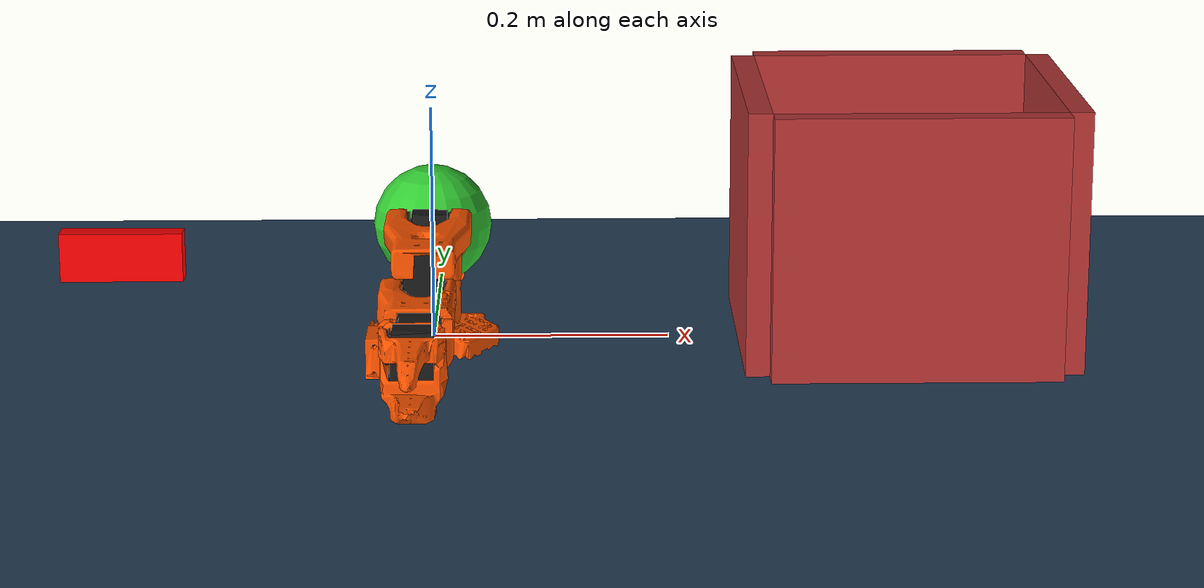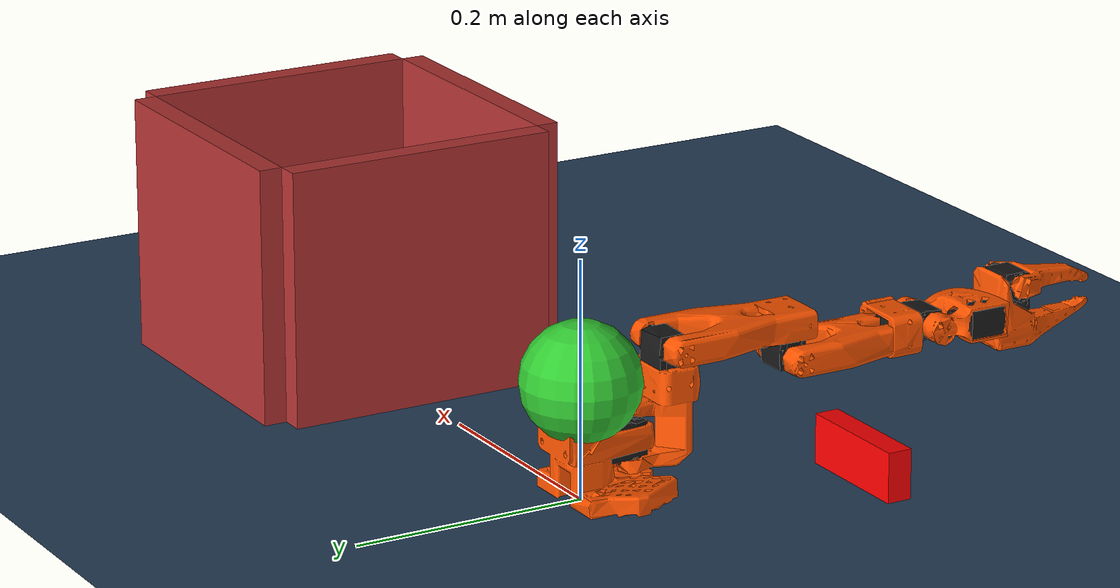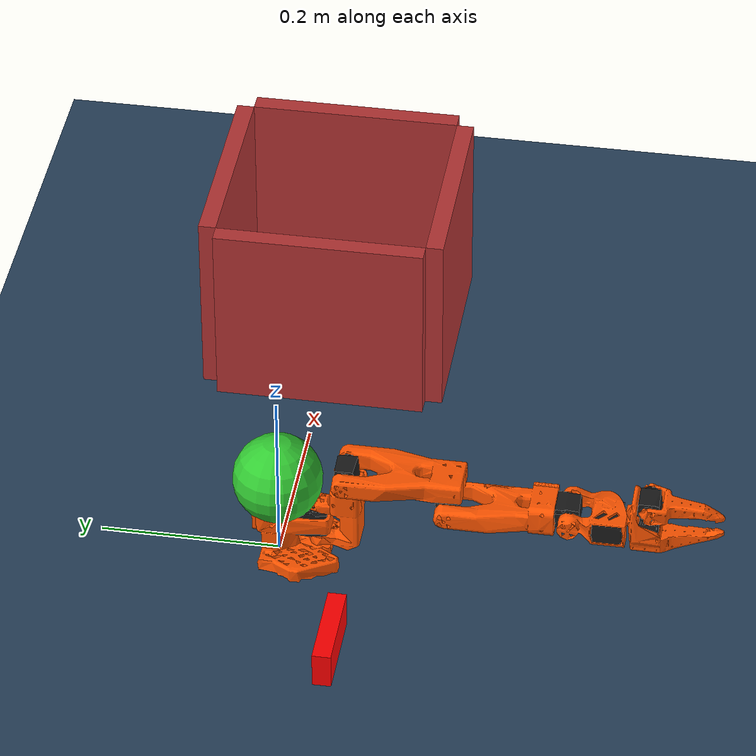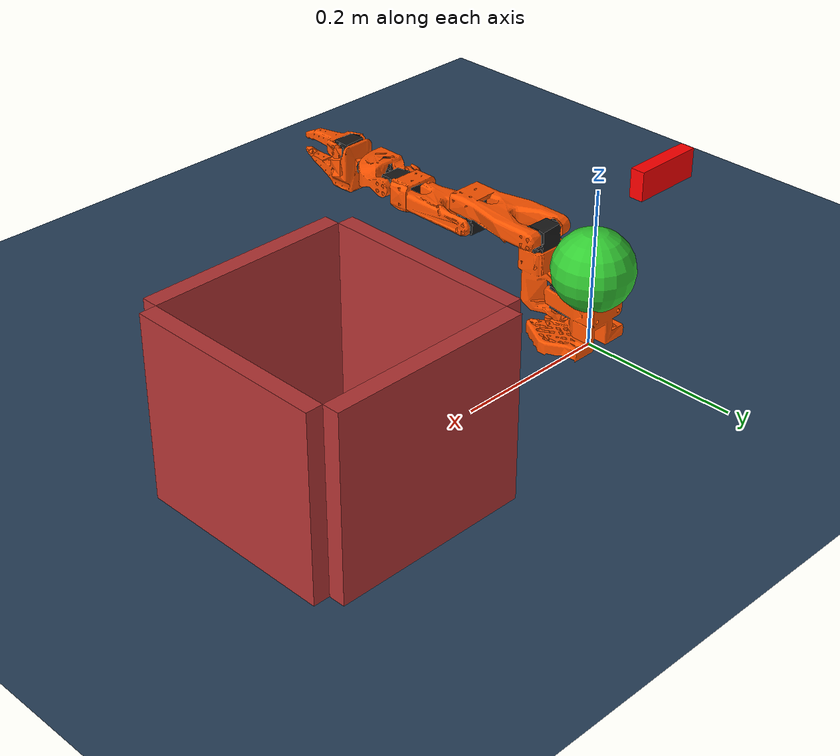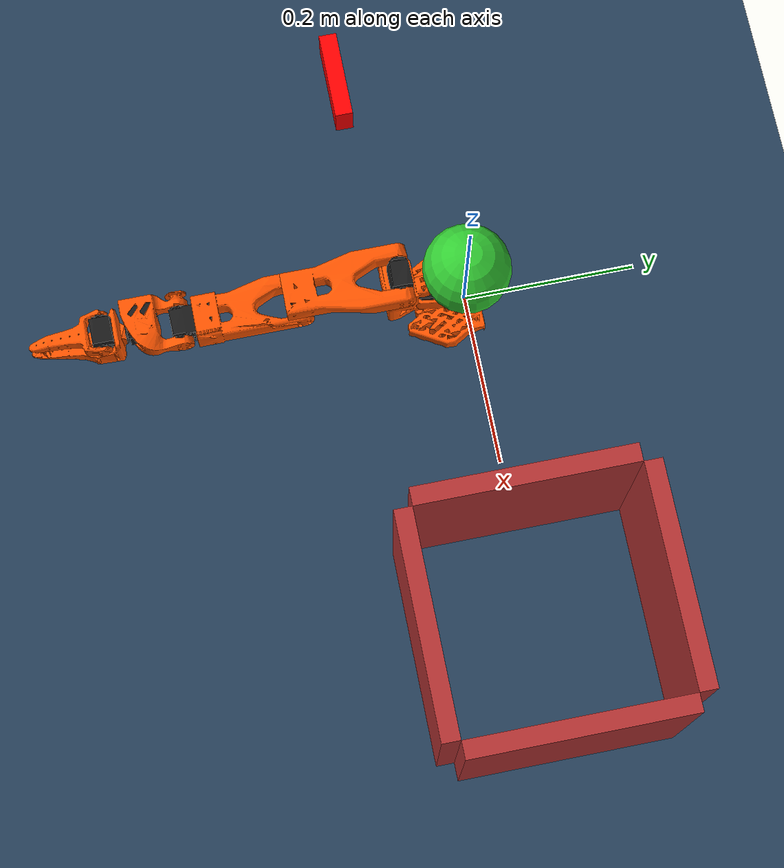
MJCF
<mujoco model="so_arm100_open_box_scene">
    <include file="so_arm100.xml"/>

    <statistic center="0 -0.2 0.1" extent="0.4"/>

    <visual>
        <headlight diffuse="0.6 0.6 0.6" ambient="0.3 0.3 0.3" specular="0 0 0"/>
        <rgba haze="0.15 0.25 0.35 1"/>
        <global azimuth="140" elevation="-30"/>
    </visual>

    <asset>
        <texture type="skybox" builtin="gradient" rgb1="0.3 0.5 0.7" rgb2="0 0 0" width="512" height="3072"/>
        <texture type="2d" name="groundplane" builtin="checker" mark="edge" rgb1="0.2 0.3 0.4" rgb2="0.1 0.2 0.3"
            markrgb="0.8 0.8 0.8" width="300" height="300"/>
        <material name="groundplane" texture="groundplane" texuniform="true" texrepeat="5 5" reflectance="0.2"/>
        <material name="box_material" rgba="0.7 0.2 0.2 1"/>
    </asset>

    <worldbody>
        <!-- Ground plane -->
        <light pos="0 0 1.5" dir="0 0 -1" directional="true"/>
        <geom name="floor" size="2 2 0.05" type="plane" material="groundplane"/>

        <!-- Open Box -->
        <body name="open_box" pos="0.4 0 0.1">
            <!-- Front wall -->
            <geom name="box_front" type="box" size="0.12 0.01 0.12" pos="0 0.13 0" material="box_material"/>
            <!-- Back wall -->
            <geom name="box_back" type="box" size="0.12 0.01 0.12" pos="0 -0.13 0" material="box_material"/>
            <!-- Left wall -->
            <geom name="box_left" type="box" size="0.01 0.12 0.12" pos="-0.13 0 0" material="box_material"/>
            <!-- Right wall -->
            <geom name="box_right" type="box" size="0.01 0.12 0.12" pos="0.13 0 0" material="box_material"/>
            <!-- Bottom -->
            <geom name="box_bottom" type="box" size="0.2 0.2 0.01" pos="0 0 -0.13" material="box_material"/>
        </body>

        <!-- Box -->
        <body name="box" pos="-0.25 -0.1 0.1">
            <geom name="box_geom" type="box" size="0.05 0.01 0.02" rgba="1 0 0 1" density="1000"/>
            <joint name="box_joint" type="free"/>
        </body>

        <!-- Ball -->
        <body name="autonomous_object" pos="0 0 0.1">
            <geom name="moving_object" type="sphere" size="0.05" rgba="0.2 0.8 0.2 1"/>
            <joint name="move_x" type="slide" axis="1 0 0"/> <!-- Movimiento a lo largo del eje X -->
        </body>
    </worldbody>

    <!-- Controladores actuadores -->
    <actuator>
        <motor joint="move_x" ctrlrange="-1 1" ctrllimited="true"/>
    </actuator>

    <!-- Opciones del simulador -->
    <option timestep="0.002" gravity="0 0 -9.81" iterations="50" integrator="RK4"/>

    <!-- Keyframes -->
    <keyframe>
        <key name="home_scene" qpos="0 0 0 0 0 0"/>
        <key name="start" qpos="0 0 0 0 0 0"/>
        <key name="end" qpos="1 0 0 0 0 0"/>
    </keyframe>
</mujoco>

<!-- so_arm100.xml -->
<mujoco model="so_arm100">
  <compiler angle="radian" meshdir="assets/"/>

  <option cone="elliptic" impratio="10"/>

  <asset>
    <material name="orange" rgba="1.0 0.331 0.0 1.0" specular="0.1" shininess="0.1"/>
    <material name="black" rgba="0.1 0.1 0.1 1.0" specular="0.1" shininess="0.1"/>

    <mesh name="Base" file="Base.stl"/>
    <mesh name="Base_Motor" file="Base_Motor.stl"/>
    <mesh name="Rotation_Pitch" file="Rotation_Pitch.stl"/>
    <mesh name="Rotation_Pitch_Motor" file="Rotation_Pitch_Motor.stl"/>
    <mesh name="Upper_Arm" file="Upper_Arm.stl"/>
    <mesh name="Upper_Arm_Motor" file="Upper_Arm_Motor.stl"/>
    <mesh name="Lower_Arm" file="Lower_Arm.stl"/>
    <mesh name="Lower_Arm_Motor" file="Lower_Arm_Motor.stl"/>
    <mesh name="Wrist_Pitch_Roll" file="Wrist_Pitch_Roll.stl"/>
    <mesh name="Wrist_Pitch_Roll_Motor" file="Wrist_Pitch_Roll_Motor.stl"/>
    <mesh name="Fixed_Jaw" file="Fixed_Jaw.stl"/>
    <mesh name="Fixed_Jaw_Motor" file="Fixed_Jaw_Motor.stl"/>
    <mesh name="Fixed_Jaw_Collision_1" file="Fixed_Jaw_Collision_1.stl"/>
    <mesh name="Fixed_Jaw_Collision_2" file="Fixed_Jaw_Collision_2.stl"/>
    <mesh name="Moving_Jaw" file="Moving_Jaw.stl"/>
    <mesh name="Moving_Jaw_Collision_1" file="Moving_Jaw_Collision_1.stl"/>
    <mesh name="Moving_Jaw_Collision_2" file="Moving_Jaw_Collision_2.stl"/>
    <mesh name="Moving_Jaw_Collision_3" file="Moving_Jaw_Collision_3.stl"/>
  </asset>

  <default>
    <default class="so_arm100">
      <joint frictionloss="0.1" armature="0.1"/>
      <position kp="50" dampratio="1" forcerange="-35 35" ctrlrange="-3.14158 3.14158"/>
      <default class="Rotation">
        <joint axis="0 1 0" range="-2.2 2.2"/>
      </default>
      <default class="Pitch">
        <joint axis="1 0 0" range="-3.14158 0.2"/>
      </default>
      <default class="Elbow">
        <joint axis="1 0 0" range="0 3.14158"/>
      </default>
      <default class="Wrist_Pitch">
        <joint axis="1 0 0" range="-2.0 1.8"/>
      </default>
      <default class="Wrist_Roll">
        <joint axis="0 1 0" range="-3.14158 3.14158"/>
      </default>
      <default class="Jaw">
        <joint axis="0 0 1" range="-0.2 2.0"/>
      </default>
      <default class="visual">
        <geom type="mesh" contype="0" conaffinity="0" density="0" group="2" material="orange"/>
        <default class="motor_visual">
          <geom material="black"/>
        </default>
      </default>
      <default class="collision">
        <geom group="3" type="mesh"/>
        <default class="finger_collision">
          <geom type="box" solimp="2 1 0.01" solref="0.01 1" friction="1 0.005 0.0001"/>
        </default>
      </default>
    </default>
  </default>

  <worldbody>
    <body name="Base" childclass="so_arm100">
      <geom type="mesh" mesh="Base" class="visual"/>
      <geom type="mesh" mesh="Base_Motor" class="motor_visual"/>
      <geom type="mesh" mesh="Base" class="collision"/>
      <body name="Rotation_Pitch" pos="0 -0.0452 0.0165" quat="0.707105 0.707108 0 0">
        <inertial pos="-9.07886e-05 0.0590972 0.031089" quat="0.363978 0.441169 -0.623108 0.533504" mass="0.119226"
          diaginertia="5.94278e-05 5.89975e-05 3.13712e-05"/>
        <joint name="Rotation" class="Rotation"/>
        <geom type="mesh" mesh="Rotation_Pitch" class="visual"/>
        <geom type="mesh" mesh="Rotation_Pitch_Motor" class="motor_visual"/>
        <geom type="mesh" mesh="Rotation_Pitch" class="collision"/>
        <body name="Upper_Arm" pos="0 0.1025 0.0306" euler="1.57079 0 0">
          <inertial pos="-1.72052e-05 0.0701802 0.00310545" quat="0.50104 0.498994 -0.493562 0.50632" mass="0.162409"
            diaginertia="0.000213312 0.000167164 7.01522e-05"/>
          <joint name="Pitch" class="Pitch"/>
          <geom type="mesh" mesh="Upper_Arm" class="visual"/>
          <geom type="mesh" mesh="Upper_Arm_Motor" class="motor_visual"/>
          <geom type="mesh" mesh="Upper_Arm" class="collision"/>
          <body name="Lower_Arm" pos="0 0.11257 0.028" euler="-1.57079 0 0">
            <inertial pos="-0.00339604 0.00137796 0.0768007" quat="0.701995 0.0787996 0.0645626 0.704859"
              mass="0.147968" diaginertia="0.000138803 0.000107748 4.84242e-05"/>
            <joint name="Elbow" class="Elbow"/>
            <geom type="mesh" mesh="Lower_Arm" class="visual"/>
            <geom type="mesh" mesh="Lower_Arm_Motor" class="motor_visual"/>
            <geom type="mesh" mesh="Lower_Arm" class="collision"/>
            <body name="Wrist_Pitch_Roll" pos="0 0.0052 0.1349" euler="-1.57079 0 0">
              <inertial pos="-0.00852653 -0.0352279 -2.34622e-05" quat="-0.0522806 0.705235 0.0549524 0.704905"
                mass="0.0661321" diaginertia="3.45403e-05 2.39041e-05 1.94704e-05"/>
              <joint name="Wrist_Pitch" class="Wrist_Pitch"/>
              <geom type="mesh" mesh="Wrist_Pitch_Roll" class="visual"/>
              <geom type="mesh" mesh="Wrist_Pitch_Roll_Motor" class="motor_visual"/>
              <geom type="mesh" mesh="Wrist_Pitch_Roll" class="collision"/>
              <body name="Fixed_Jaw" pos="0 -0.0601 0" euler="0 1.57079 0">
                <inertial pos="0.00552377 -0.0280167 0.000483583" quat="0.41836 0.620891 -0.350644 0.562599"
                  mass="0.0929859" diaginertia="5.03136e-05 4.64098e-05 2.72961e-05"/>
                <joint name="Wrist_Roll" class="Wrist_Roll"/>
                <geom type="mesh" mesh="Fixed_Jaw" class="visual"/>
                <geom type="mesh" mesh="Fixed_Jaw_Motor" class="motor_visual"/>
                <geom type="mesh" mesh="Fixed_Jaw_Collision_1" class="collision"/>
                <geom type="mesh" mesh="Fixed_Jaw_Collision_2" class="collision"/>
                <geom class="finger_collision" name="fixed_jaw_pad_1" size="0.001 0.005 0.004" pos="0.0089 -0.1014 0"/>
                <geom class="finger_collision" name="fixed_jaw_pad_2" size="0.001 0.005 0.006" pos="0.0109 -0.0914 0"/>
                <geom class="finger_collision" name="fixed_jaw_pad_3" size="0.001 0.01 0.007" pos="0.0126 -0.0768 0"/>
                <geom class="finger_collision" name="fixed_jaw_pad_4" size="0.001 0.01 0.008" pos="0.0143 -0.0572 0"/>
                <body name="Moving_Jaw" pos="-0.0202 -0.0244 0" quat="1.34924e-11 -3.67321e-06 1 -3.67321e-06">
                  <inertial pos="-0.00161745 -0.0303473 0.000449646" quat="0.696562 0.716737 -0.0239844 -0.0227026"
                    mass="0.0202444" diaginertia="1.11265e-05 8.99651e-06 2.99548e-06"/>
                  <joint name="Jaw" class="Jaw"/>
                  <geom type="mesh" mesh="Moving_Jaw" class="visual"/>
                  <geom type="mesh" mesh="Moving_Jaw_Collision_1" class="collision"/>
                  <geom type="mesh" mesh="Moving_Jaw_Collision_2" class="collision"/>
                  <geom type="mesh" mesh="Moving_Jaw_Collision_3" class="collision"/>
                  <geom class="finger_collision" name="moving_jaw_pad_1" size="0.001 0.005 0.004" pos="-0.0113 -0.077 0"/>
                  <geom class="finger_collision" name="moving_jaw_pad_2" size="0.001 0.005 0.006" pos="-0.0093 -0.067 0"/>
                  <geom class="finger_collision" name="moving_jaw_pad_3" size="0.001 0.01 0.006" pos="-0.0073 -0.055 0"/>
                  <geom class="finger_collision" name="moving_jaw_pad_4" size="0.001 0.01 0.008" pos="-0.0073 -0.035 0"/>
                </body>
              </body>
            </body>
          </body>
        </body>
      </body>
    </body>
  </worldbody>

  <actuator>
    <position class="Rotation" name="Rotation" joint="Rotation"/>
    <position class="Pitch" name="Pitch" joint="Pitch"/>
    <position class="Elbow" name="Elbow" joint="Elbow"/>
    <position class="Wrist_Pitch" name="Wrist_Pitch" joint="Wrist_Pitch"/>
    <position class="Wrist_Roll" name="Wrist_Roll" joint="Wrist_Roll"/>
    <position class="Jaw" name="Jaw" joint="Jaw"/>
  </actuator>

  <contact>
    <exclude body1="Base" body2="Rotation_Pitch"/>
  </contact>

  <keyframe>
      <key name="home" qpos="0 0 0 0 0 0 -0.25 0 0 0 0 0 0" ctrl="0 0 0 0 0 0"/>
  </keyframe>

</mujoco>
